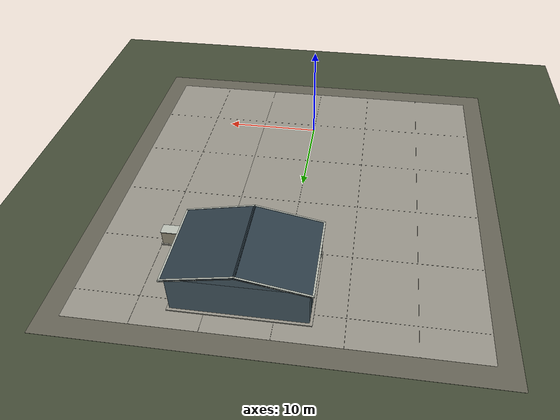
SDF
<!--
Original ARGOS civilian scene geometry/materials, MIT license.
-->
<?xml version="1.0"?>
<sdf version="1.9">
  <world name="inspection_content">
    <scene>
      <ambient>0.55 0.60 0.66</ambient>
      <background>0.76 0.83 0.90</background>
      <shadows>true</shadows>
      <sky />
    </scene>
    <light name="inspection_sun" type="directional">
      <cast_shadows>true</cast_shadows>
      <pose>0 0 12 0 0 0</pose>
      <diffuse>0.93 0.89 0.81 1</diffuse>
      <specular>0.18 0.18 0.18 1</specular>
      <direction>-0.45 0.35 -0.82</direction>
      <attenuation>
        <range>1000</range>
        <constant>1</constant>
        <linear>0</linear>
        <quadratic>0</quadratic>
      </attenuation>
    </light>
    <model name="inspection_ground">
      <static>true</static>
      <pose>0 0 0 0 0 0</pose>
      <link name="structure">
        <collision name="ground_collision">
          <pose>0 0 0 0 0 0</pose>
          <geometry>
            <plane>
              <normal>0 0 1</normal>
              <size>2000 2000</size>
            </plane>
          </geometry>
        </collision>
        <visual name="rough_ground">
          <pose>0 0 0 0 0 0</pose>
          <geometry>
            <plane>
              <normal>0 0 1</normal>
              <size>2000 2000</size>
            </plane>
          </geometry>
          <material>
            <ambient>0.26 0.29 0.21 1</ambient>
            <diffuse>0.26 0.29 0.21 1</diffuse>
            <specular>0.06 0.06 0.06 1</specular>
            <pbr>
              <metal>
                <roughness>0.8</roughness>
                <metalness>0</metalness>
              </metal>
            </pbr>
          </material>
        </visual>
        <visual name="gravel_shoulder">
          <pose>0 11 0 0 0 0</pose>
          <geometry>
            <box>
              <size>40 42 0.01</size>
            </box>
          </geometry>
          <material>
            <ambient>0.39 0.38 0.33 1</ambient>
            <diffuse>0.39 0.38 0.33 1</diffuse>
            <specular>0.06 0.06 0.06 1</specular>
            <pbr>
              <metal>
                <roughness>0.8</roughness>
                <metalness>0</metalness>
              </metal>
            </pbr>
          </material>
        </visual>
        <visual name="concrete_apron">
          <pose>0 11 0.005 0 0 0</pose>
          <geometry>
            <box>
              <size>36 38 0.01</size>
            </box>
          </geometry>
          <material>
            <ambient>0.58 0.57 0.53 1</ambient>
            <diffuse>0.58 0.57 0.53 1</diffuse>
            <specular>0.06 0.06 0.06 1</specular>
            <pbr>
              <metal>
                <roughness>0.8</roughness>
                <metalness>0</metalness>
              </metal>
            </pbr>
          </material>
        </visual>
        <visual name="expansion_joint_long_0">
          <pose>-12 11 0.0105 0 0 0</pose>
          <geometry>
            <box>
              <size>0.018 38 0.001</size>
            </box>
          </geometry>
          <material>
            <ambient>0.47 0.465 0.43 1</ambient>
            <diffuse>0.47 0.465 0.43 1</diffuse>
            <specular>0.06 0.06 0.06 1</specular>
            <pbr>
              <metal>
                <roughness>0.8</roughness>
                <metalness>0</metalness>
              </metal>
            </pbr>
          </material>
        </visual>
        <visual name="expansion_joint_long_1">
          <pose>-6 11 0.0105 0 0 0</pose>
          <geometry>
            <box>
              <size>0.018 38 0.001</size>
            </box>
          </geometry>
          <material>
            <ambient>0.47 0.465 0.43 1</ambient>
            <diffuse>0.47 0.465 0.43 1</diffuse>
            <specular>0.06 0.06 0.06 1</specular>
            <pbr>
              <metal>
                <roughness>0.8</roughness>
                <metalness>0</metalness>
              </metal>
            </pbr>
          </material>
        </visual>
        <visual name="expansion_joint_long_2">
          <pose>0 11 0.0105 0 0 0</pose>
          <geometry>
            <box>
              <size>0.018 38 0.001</size>
            </box>
          </geometry>
          <material>
            <ambient>0.47 0.465 0.43 1</ambient>
            <diffuse>0.47 0.465 0.43 1</diffuse>
            <specular>0.06 0.06 0.06 1</specular>
            <pbr>
              <metal>
                <roughness>0.8</roughness>
                <metalness>0</metalness>
              </metal>
            </pbr>
          </material>
        </visual>
        <visual name="expansion_joint_long_3">
          <pose>6 11 0.0105 0 0 0</pose>
          <geometry>
            <box>
              <size>0.018 38 0.001</size>
            </box>
          </geometry>
          <material>
            <ambient>0.47 0.465 0.43 1</ambient>
            <diffuse>0.47 0.465 0.43 1</diffuse>
            <specular>0.06 0.06 0.06 1</specular>
            <pbr>
              <metal>
                <roughness>0.8</roughness>
                <metalness>0</metalness>
              </metal>
            </pbr>
          </material>
        </visual>
        <visual name="expansion_joint_long_4">
          <pose>12 11 0.0105 0 0 0</pose>
          <geometry>
            <box>
              <size>0.018 38 0.001</size>
            </box>
          </geometry>
          <material>
            <ambient>0.47 0.465 0.43 1</ambient>
            <diffuse>0.47 0.465 0.43 1</diffuse>
            <specular>0.06 0.06 0.06 1</specular>
            <pbr>
              <metal>
                <roughness>0.8</roughness>
                <metalness>0</metalness>
              </metal>
            </pbr>
          </material>
        </visual>
        <visual name="expansion_joint_cross_0">
          <pose>0 -1 0.0105 0 0 0</pose>
          <geometry>
            <box>
              <size>36 0.018 0.001</size>
            </box>
          </geometry>
          <material>
            <ambient>0.47 0.465 0.43 1</ambient>
            <diffuse>0.47 0.465 0.43 1</diffuse>
            <specular>0.06 0.06 0.06 1</specular>
            <pbr>
              <metal>
                <roughness>0.8</roughness>
                <metalness>0</metalness>
              </metal>
            </pbr>
          </material>
        </visual>
        <visual name="expansion_joint_cross_1">
          <pose>0 6 0.0105 0 0 0</pose>
          <geometry>
            <box>
              <size>36 0.018 0.001</size>
            </box>
          </geometry>
          <material>
            <ambient>0.47 0.465 0.43 1</ambient>
            <diffuse>0.47 0.465 0.43 1</diffuse>
            <specular>0.06 0.06 0.06 1</specular>
            <pbr>
              <metal>
                <roughness>0.8</roughness>
                <metalness>0</metalness>
              </metal>
            </pbr>
          </material>
        </visual>
        <visual name="expansion_joint_cross_2">
          <pose>0 13 0.0105 0 0 0</pose>
          <geometry>
            <box>
              <size>36 0.018 0.001</size>
            </box>
          </geometry>
          <material>
            <ambient>0.47 0.465 0.43 1</ambient>
            <diffuse>0.47 0.465 0.43 1</diffuse>
            <specular>0.06 0.06 0.06 1</specular>
            <pbr>
              <metal>
                <roughness>0.8</roughness>
                <metalness>0</metalness>
              </metal>
            </pbr>
          </material>
        </visual>
        <visual name="expansion_joint_cross_3">
          <pose>0 20 0.0105 0 0 0</pose>
          <geometry>
            <box>
              <size>36 0.018 0.001</size>
            </box>
          </geometry>
          <material>
            <ambient>0.47 0.465 0.43 1</ambient>
            <diffuse>0.47 0.465 0.43 1</diffuse>
            <specular>0.06 0.06 0.06 1</specular>
            <pbr>
              <metal>
                <roughness>0.8</roughness>
                <metalness>0</metalness>
              </metal>
            </pbr>
          </material>
        </visual>
        <visual name="expansion_joint_cross_4">
          <pose>0 27 0.0105 0 0 0</pose>
          <geometry>
            <box>
              <size>36 0.018 0.001</size>
            </box>
          </geometry>
          <material>
            <ambient>0.47 0.465 0.43 1</ambient>
            <diffuse>0.47 0.465 0.43 1</diffuse>
            <specular>0.06 0.06 0.06 1</specular>
            <pbr>
              <metal>
                <roughness>0.8</roughness>
                <metalness>0</metalness>
              </metal>
            </pbr>
          </material>
        </visual>
      </link>
    </model>
    <model name="inspection_shed">
      <static>true</static>
      <pose>3 24 0 0 0 0</pose>
      <link name="structure">
        <visual name="footing">
          <pose>0 0 0.04 0 0 0</pose>
          <geometry>
            <box>
              <size>12.5 8.5 0.16</size>
            </box>
          </geometry>
          <material>
            <ambient>0.58 0.57 0.53 1</ambient>
            <diffuse>0.58 0.57 0.53 1</diffuse>
            <specular>0.06 0.06 0.06 1</specular>
            <pbr>
              <metal>
                <roughness>0.8</roughness>
                <metalness>0</metalness>
              </metal>
            </pbr>
          </material>
        </visual>
        <visual name="enclosed_walls">
          <pose>0 0 1.99 0 0 0</pose>
          <geometry>
            <box>
              <size>12 8 3.74</size>
            </box>
          </geometry>
          <material>
            <ambient>0.31 0.4 0.44 1</ambient>
            <diffuse>0.31 0.4 0.44 1</diffuse>
            <specular>0.06 0.06 0.06 1</specular>
            <pbr>
              <metal>
                <roughness>0.8</roughness>
                <metalness>0</metalness>
              </metal>
            </pbr>
          </material>
        </visual>
        <collision name="wall_collision">
          <pose>0 0 1.93 0 0 0</pose>
          <geometry>
            <box>
              <size>12 8 3.86</size>
            </box>
          </geometry>
        </collision>
        <visual name="front_gable">
          <pose>0 -4 3.86 0 0 0</pose>
          <geometry>
            <mesh>
              <uri>model://argos_inspection_assets/shed_gable.obj</uri>
            </mesh>
          </geometry>
          <material>
            <ambient>0.31 0.4 0.44 1</ambient>
            <diffuse>0.31 0.4 0.44 1</diffuse>
            <specular>0.06 0.06 0.06 1</specular>
            <pbr>
              <metal>
                <roughness>0.8</roughness>
                <metalness>0</metalness>
              </metal>
            </pbr>
          </material>
        </visual>
        <visual name="front_fascia_-1">
          <pose>-3.12 -4.25 4.46 0 -0.1974 0</pose>
          <geometry>
            <box>
              <size>6.52 0.15 0.18</size>
            </box>
          </geometry>
          <material>
            <ambient>0.72 0.74 0.7 1</ambient>
            <diffuse>0.72 0.74 0.7 1</diffuse>
            <specular>0.06 0.06 0.06 1</specular>
            <pbr>
              <metal>
                <roughness>0.8</roughness>
                <metalness>0</metalness>
              </metal>
            </pbr>
          </material>
        </visual>
        <visual name="front_fascia_1">
          <pose>3.12 -4.25 4.46 0 0.1974 0</pose>
          <geometry>
            <box>
              <size>6.52 0.15 0.18</size>
            </box>
          </geometry>
          <material>
            <ambient>0.72 0.74 0.7 1</ambient>
            <diffuse>0.72 0.74 0.7 1</diffuse>
            <specular>0.06 0.06 0.06 1</specular>
            <pbr>
              <metal>
                <roughness>0.8</roughness>
                <metalness>0</metalness>
              </metal>
            </pbr>
          </material>
        </visual>
        <visual name="rear_gable">
          <pose>0 4 3.86 0 0 0</pose>
          <geometry>
            <mesh>
              <uri>model://argos_inspection_assets/shed_gable.obj</uri>
            </mesh>
          </geometry>
          <material>
            <ambient>0.31 0.4 0.44 1</ambient>
            <diffuse>0.31 0.4 0.44 1</diffuse>
            <specular>0.06 0.06 0.06 1</specular>
            <pbr>
              <metal>
                <roughness>0.8</roughness>
                <metalness>0</metalness>
              </metal>
            </pbr>
          </material>
        </visual>
        <visual name="rear_fascia_-1">
          <pose>-3.12 4.25 4.46 0 -0.1974 0</pose>
          <geometry>
            <box>
              <size>6.52 0.15 0.18</size>
            </box>
          </geometry>
          <material>
            <ambient>0.72 0.74 0.7 1</ambient>
            <diffuse>0.72 0.74 0.7 1</diffuse>
            <specular>0.06 0.06 0.06 1</specular>
            <pbr>
              <metal>
                <roughness>0.8</roughness>
                <metalness>0</metalness>
              </metal>
            </pbr>
          </material>
        </visual>
        <visual name="rear_fascia_1">
          <pose>3.12 4.25 4.46 0 0.1974 0</pose>
          <geometry>
            <box>
              <size>6.52 0.15 0.18</size>
            </box>
          </geometry>
          <material>
            <ambient>0.72 0.74 0.7 1</ambient>
            <diffuse>0.72 0.74 0.7 1</diffuse>
            <specular>0.06 0.06 0.06 1</specular>
            <pbr>
              <metal>
                <roughness>0.8</roughness>
                <metalness>0</metalness>
              </metal>
            </pbr>
          </material>
        </visual>
        <visual name="west_roof">
          <pose>-3.12 0 4.46 0 -0.1974 0</pose>
          <geometry>
            <box>
              <size>6.52 8.65 0.13</size>
            </box>
          </geometry>
          <material>
            <ambient>0.17 0.23 0.27 1</ambient>
            <diffuse>0.17 0.23 0.27 1</diffuse>
            <specular>0.06 0.06 0.06 1</specular>
            <pbr>
              <metal>
                <roughness>0.7</roughness>
                <metalness>0</metalness>
              </metal>
            </pbr>
          </material>
        </visual>
        <collision name="west_roof_collision">
          <pose>-3.12 0 4.46 0 -0.1974 0</pose>
          <geometry>
            <box>
              <size>6.52 8.65 0.13</size>
            </box>
          </geometry>
        </collision>
        <visual name="west_gutter">
          <pose>-6.3 0 3.83 0 0 0</pose>
          <geometry>
            <box>
              <size>0.16 8.68 0.15</size>
            </box>
          </geometry>
          <material>
            <ambient>0.72 0.74 0.7 1</ambient>
            <diffuse>0.72 0.74 0.7 1</diffuse>
            <specular>0.06 0.06 0.06 1</specular>
            <pbr>
              <metal>
                <roughness>0.8</roughness>
                <metalness>0</metalness>
              </metal>
            </pbr>
          </material>
        </visual>
        <visual name="west_downpipe">
          <pose>-6.16 -3.55 1.94 0 0 0</pose>
          <geometry>
            <cylinder>
              <radius>0.055</radius>
              <length>3.55</length>
            </cylinder>
          </geometry>
          <material>
            <ambient>0.72 0.74 0.7 1</ambient>
            <diffuse>0.72 0.74 0.7 1</diffuse>
            <specular>0.06 0.06 0.06 1</specular>
            <pbr>
              <metal>
                <roughness>0.8</roughness>
                <metalness>0</metalness>
              </metal>
            </pbr>
          </material>
        </visual>
        <visual name="west_wall_seam_0">
          <pose>-6.014 -3 2.04 0 0 0</pose>
          <geometry>
            <box>
              <size>0.045 0.035 3.54</size>
            </box>
          </geometry>
          <material>
            <ambient>0.37 0.45 0.48 1</ambient>
            <diffuse>0.37 0.45 0.48 1</diffuse>
            <specular>0.06 0.06 0.06 1</specular>
            <pbr>
              <metal>
                <roughness>0.8</roughness>
                <metalness>0</metalness>
              </metal>
            </pbr>
          </material>
        </visual>
        <visual name="west_wall_seam_1">
          <pose>-6.014 -2 2.04 0 0 0</pose>
          <geometry>
            <box>
              <size>0.045 0.035 3.54</size>
            </box>
          </geometry>
          <material>
            <ambient>0.37 0.45 0.48 1</ambient>
            <diffuse>0.37 0.45 0.48 1</diffuse>
            <specular>0.06 0.06 0.06 1</specular>
            <pbr>
              <metal>
                <roughness>0.8</roughness>
                <metalness>0</metalness>
              </metal>
            </pbr>
          </material>
        </visual>
        <visual name="west_wall_seam_2">
          <pose>-6.014 -1 2.04 0 0 0</pose>
          <geometry>
            <box>
              <size>0.045 0.035 3.54</size>
            </box>
          </geometry>
          <material>
            <ambient>0.37 0.45 0.48 1</ambient>
            <diffuse>0.37 0.45 0.48 1</diffuse>
            <specular>0.06 0.06 0.06 1</specular>
            <pbr>
              <metal>
                <roughness>0.8</roughness>
                <metalness>0</metalness>
              </metal>
            </pbr>
          </material>
        </visual>
        <visual name="west_wall_seam_3">
          <pose>-6.014 0 2.04 0 0 0</pose>
          <geometry>
            <box>
              <size>0.045 0.035 3.54</size>
            </box>
          </geometry>
          <material>
            <ambient>0.37 0.45 0.48 1</ambient>
            <diffuse>0.37 0.45 0.48 1</diffuse>
            <specular>0.06 0.06 0.06 1</specular>
            <pbr>
              <metal>
                <roughness>0.8</roughness>
                <metalness>0</metalness>
              </metal>
            </pbr>
          </material>
        </visual>
        <visual name="west_wall_seam_4">
          <pose>-6.014 1 2.04 0 0 0</pose>
          <geometry>
            <box>
              <size>0.045 0.035 3.54</size>
            </box>
          </geometry>
          <material>
            <ambient>0.37 0.45 0.48 1</ambient>
            <diffuse>0.37 0.45 0.48 1</diffuse>
            <specular>0.06 0.06 0.06 1</specular>
            <pbr>
              <metal>
                <roughness>0.8</roughness>
                <metalness>0</metalness>
              </metal>
            </pbr>
          </material>
        </visual>
        <visual name="west_wall_seam_5">
          <pose>-6.014 2 2.04 0 0 0</pose>
          <geometry>
            <box>
              <size>0.045 0.035 3.54</size>
            </box>
          </geometry>
          <material>
            <ambient>0.37 0.45 0.48 1</ambient>
            <diffuse>0.37 0.45 0.48 1</diffuse>
            <specular>0.06 0.06 0.06 1</specular>
            <pbr>
              <metal>
                <roughness>0.8</roughness>
                <metalness>0</metalness>
              </metal>
            </pbr>
          </material>
        </visual>
        <visual name="west_wall_seam_6">
          <pose>-6.014 3 2.04 0 0 0</pose>
          <geometry>
            <box>
              <size>0.045 0.035 3.54</size>
            </box>
          </geometry>
          <material>
            <ambient>0.37 0.45 0.48 1</ambient>
            <diffuse>0.37 0.45 0.48 1</diffuse>
            <specular>0.06 0.06 0.06 1</specular>
            <pbr>
              <metal>
                <roughness>0.8</roughness>
                <metalness>0</metalness>
              </metal>
            </pbr>
          </material>
        </visual>
        <visual name="east_roof">
          <pose>3.12 0 4.46 0 0.1974 0</pose>
          <geometry>
            <box>
              <size>6.52 8.65 0.13</size>
            </box>
          </geometry>
          <material>
            <ambient>0.17 0.23 0.27 1</ambient>
            <diffuse>0.17 0.23 0.27 1</diffuse>
            <specular>0.06 0.06 0.06 1</specular>
            <pbr>
              <metal>
                <roughness>0.7</roughness>
                <metalness>0</metalness>
              </metal>
            </pbr>
          </material>
        </visual>
        <collision name="east_roof_collision">
          <pose>3.12 0 4.46 0 0.1974 0</pose>
          <geometry>
            <box>
              <size>6.52 8.65 0.13</size>
            </box>
          </geometry>
        </collision>
        <visual name="east_gutter">
          <pose>6.3 0 3.83 0 0 0</pose>
          <geometry>
            <box>
              <size>0.16 8.68 0.15</size>
            </box>
          </geometry>
          <material>
            <ambient>0.72 0.74 0.7 1</ambient>
            <diffuse>0.72 0.74 0.7 1</diffuse>
            <specular>0.06 0.06 0.06 1</specular>
            <pbr>
              <metal>
                <roughness>0.8</roughness>
                <metalness>0</metalness>
              </metal>
            </pbr>
          </material>
        </visual>
        <visual name="east_downpipe">
          <pose>6.16 -3.55 1.94 0 0 0</pose>
          <geometry>
            <cylinder>
              <radius>0.055</radius>
              <length>3.55</length>
            </cylinder>
          </geometry>
          <material>
            <ambient>0.72 0.74 0.7 1</ambient>
            <diffuse>0.72 0.74 0.7 1</diffuse>
            <specular>0.06 0.06 0.06 1</specular>
            <pbr>
              <metal>
                <roughness>0.8</roughness>
                <metalness>0</metalness>
              </metal>
            </pbr>
          </material>
        </visual>
        <visual name="east_wall_seam_0">
          <pose>6.014 -3 2.04 0 0 0</pose>
          <geometry>
            <box>
              <size>0.045 0.035 3.54</size>
            </box>
          </geometry>
          <material>
            <ambient>0.37 0.45 0.48 1</ambient>
            <diffuse>0.37 0.45 0.48 1</diffuse>
            <specular>0.06 0.06 0.06 1</specular>
            <pbr>
              <metal>
                <roughness>0.8</roughness>
                <metalness>0</metalness>
              </metal>
            </pbr>
          </material>
        </visual>
        <visual name="east_wall_seam_1">
          <pose>6.014 -2 2.04 0 0 0</pose>
          <geometry>
            <box>
              <size>0.045 0.035 3.54</size>
            </box>
          </geometry>
          <material>
            <ambient>0.37 0.45 0.48 1</ambient>
            <diffuse>0.37 0.45 0.48 1</diffuse>
            <specular>0.06 0.06 0.06 1</specular>
            <pbr>
              <metal>
                <roughness>0.8</roughness>
                <metalness>0</metalness>
              </metal>
            </pbr>
          </material>
        </visual>
        <visual name="east_wall_seam_2">
          <pose>6.014 -1 2.04 0 0 0</pose>
          <geometry>
            <box>
              <size>0.045 0.035 3.54</size>
            </box>
          </geometry>
          <material>
            <ambient>0.37 0.45 0.48 1</ambient>
            <diffuse>0.37 0.45 0.48 1</diffuse>
            <specular>0.06 0.06 0.06 1</specular>
            <pbr>
              <metal>
                <roughness>0.8</roughness>
                <metalness>0</metalness>
              </metal>
            </pbr>
          </material>
        </visual>
        <visual name="east_wall_seam_3">
          <pose>6.014 0 2.04 0 0 0</pose>
          <geometry>
            <box>
              <size>0.045 0.035 3.54</size>
            </box>
          </geometry>
          <material>
            <ambient>0.37 0.45 0.48 1</ambient>
            <diffuse>0.37 0.45 0.48 1</diffuse>
            <specular>0.06 0.06 0.06 1</specular>
            <pbr>
              <metal>
                <roughness>0.8</roughness>
                <metalness>0</metalness>
              </metal>
            </pbr>
          </material>
        </visual>
        <visual name="east_wall_seam_4">
          <pose>6.014 1 2.04 0 0 0</pose>
          <geometry>
            <box>
              <size>0.045 0.035 3.54</size>
            </box>
          </geometry>
          <material>
            <ambient>0.37 0.45 0.48 1</ambient>
            <diffuse>0.37 0.45 0.48 1</diffuse>
            <specular>0.06 0.06 0.06 1</specular>
            <pbr>
              <metal>
                <roughness>0.8</roughness>
                <metalness>0</metalness>
              </metal>
            </pbr>
          </material>
        </visual>
        <visual name="east_wall_seam_5">
          <pose>6.014 2 2.04 0 0 0</pose>
          <geometry>
            <box>
              <size>0.045 0.035 3.54</size>
            </box>
          </geometry>
          <material>
            <ambient>0.37 0.45 0.48 1</ambient>
            <diffuse>0.37 0.45 0.48 1</diffuse>
            <specular>0.06 0.06 0.06 1</specular>
            <pbr>
              <metal>
                <roughness>0.8</roughness>
                <metalness>0</metalness>
              </metal>
            </pbr>
          </material>
        </visual>
        <visual name="east_wall_seam_6">
          <pose>6.014 3 2.04 0 0 0</pose>
          <geometry>
            <box>
              <size>0.045 0.035 3.54</size>
            </box>
          </geometry>
          <material>
            <ambient>0.37 0.45 0.48 1</ambient>
            <diffuse>0.37 0.45 0.48 1</diffuse>
            <specular>0.06 0.06 0.06 1</specular>
            <pbr>
              <metal>
                <roughness>0.8</roughness>
                <metalness>0</metalness>
              </metal>
            </pbr>
          </material>
        </visual>
        <visual name="ridge_cap">
          <pose>0 0 5.1 0 0 0</pose>
          <geometry>
            <box>
              <size>0.22 8.68 0.1</size>
            </box>
          </geometry>
          <material>
            <ambient>0.17 0.23 0.27 1</ambient>
            <diffuse>0.17 0.23 0.27 1</diffuse>
            <specular>0.06 0.06 0.06 1</specular>
            <pbr>
              <metal>
                <roughness>0.7</roughness>
                <metalness>0</metalness>
              </metal>
            </pbr>
          </material>
        </visual>
        <visual name="roller_door_recess">
          <pose>-0.7 -4.04 1.785 0 0 0</pose>
          <geometry>
            <box>
              <size>5.7 0.12 3.35</size>
            </box>
          </geometry>
          <material>
            <ambient>0.23 0.29 0.3 1</ambient>
            <diffuse>0.23 0.29 0.3 1</diffuse>
            <specular>0.06 0.06 0.06 1</specular>
            <pbr>
              <metal>
                <roughness>0.8</roughness>
                <metalness>0</metalness>
              </metal>
            </pbr>
          </material>
        </visual>
        <visual name="roller_door_slat_0">
          <pose>-0.7 -4.12 0.27 0 0 0</pose>
          <geometry>
            <box>
              <size>5.44 0.095 0.255</size>
            </box>
          </geometry>
          <material>
            <ambient>0.53 0.59 0.59 1</ambient>
            <diffuse>0.53 0.59 0.59 1</diffuse>
            <specular>0.06 0.06 0.06 1</specular>
            <pbr>
              <metal>
                <roughness>0.65</roughness>
                <metalness>0</metalness>
              </metal>
            </pbr>
          </material>
        </visual>
        <visual name="roller_door_slat_1">
          <pose>-0.7 -4.12 0.537 0 0 0</pose>
          <geometry>
            <box>
              <size>5.44 0.095 0.255</size>
            </box>
          </geometry>
          <material>
            <ambient>0.53 0.59 0.59 1</ambient>
            <diffuse>0.53 0.59 0.59 1</diffuse>
            <specular>0.06 0.06 0.06 1</specular>
            <pbr>
              <metal>
                <roughness>0.65</roughness>
                <metalness>0</metalness>
              </metal>
            </pbr>
          </material>
        </visual>
        <visual name="roller_door_slat_2">
          <pose>-0.7 -4.12 0.804 0 0 0</pose>
          <geometry>
            <box>
              <size>5.44 0.095 0.255</size>
            </box>
          </geometry>
          <material>
            <ambient>0.53 0.59 0.59 1</ambient>
            <diffuse>0.53 0.59 0.59 1</diffuse>
            <specular>0.06 0.06 0.06 1</specular>
            <pbr>
              <metal>
                <roughness>0.65</roughness>
                <metalness>0</metalness>
              </metal>
            </pbr>
          </material>
        </visual>
        <visual name="roller_door_slat_3">
          <pose>-0.7 -4.12 1.071 0 0 0</pose>
          <geometry>
            <box>
              <size>5.44 0.095 0.255</size>
            </box>
          </geometry>
          <material>
            <ambient>0.53 0.59 0.59 1</ambient>
            <diffuse>0.53 0.59 0.59 1</diffuse>
            <specular>0.06 0.06 0.06 1</specular>
            <pbr>
              <metal>
                <roughness>0.65</roughness>
                <metalness>0</metalness>
              </metal>
            </pbr>
          </material>
        </visual>
        <visual name="roller_door_slat_4">
          <pose>-0.7 -4.12 1.338 0 0 0</pose>
          <geometry>
            <box>
              <size>5.44 0.095 0.255</size>
            </box>
          </geometry>
          <material>
            <ambient>0.53 0.59 0.59 1</ambient>
            <diffuse>0.53 0.59 0.59 1</diffuse>
            <specular>0.06 0.06 0.06 1</specular>
            <pbr>
              <metal>
                <roughness>0.65</roughness>
                <metalness>0</metalness>
              </metal>
            </pbr>
          </material>
        </visual>
        <visual name="roller_door_slat_5">
          <pose>-0.7 -4.12 1.605 0 0 0</pose>
          <geometry>
            <box>
              <size>5.44 0.095 0.255</size>
            </box>
          </geometry>
          <material>
            <ambient>0.53 0.59 0.59 1</ambient>
            <diffuse>0.53 0.59 0.59 1</diffuse>
            <specular>0.06 0.06 0.06 1</specular>
            <pbr>
              <metal>
                <roughness>0.65</roughness>
                <metalness>0</metalness>
              </metal>
            </pbr>
          </material>
        </visual>
        <visual name="roller_door_slat_6">
          <pose>-0.7 -4.12 1.872 0 0 0</pose>
          <geometry>
            <box>
              <size>5.44 0.095 0.255</size>
            </box>
          </geometry>
          <material>
            <ambient>0.53 0.59 0.59 1</ambient>
            <diffuse>0.53 0.59 0.59 1</diffuse>
            <specular>0.06 0.06 0.06 1</specular>
            <pbr>
              <metal>
                <roughness>0.65</roughness>
                <metalness>0</metalness>
              </metal>
            </pbr>
          </material>
        </visual>
        <visual name="roller_door_slat_7">
          <pose>-0.7 -4.12 2.139 0 0 0</pose>
          <geometry>
            <box>
              <size>5.44 0.095 0.255</size>
            </box>
          </geometry>
          <material>
            <ambient>0.53 0.59 0.59 1</ambient>
            <diffuse>0.53 0.59 0.59 1</diffuse>
            <specular>0.06 0.06 0.06 1</specular>
            <pbr>
              <metal>
                <roughness>0.65</roughness>
                <metalness>0</metalness>
              </metal>
            </pbr>
          </material>
        </visual>
        <visual name="roller_door_slat_8">
          <pose>-0.7 -4.12 2.406 0 0 0</pose>
          <geometry>
            <box>
              <size>5.44 0.095 0.255</size>
            </box>
          </geometry>
          <material>
            <ambient>0.53 0.59 0.59 1</ambient>
            <diffuse>0.53 0.59 0.59 1</diffuse>
            <specular>0.06 0.06 0.06 1</specular>
            <pbr>
              <metal>
                <roughness>0.65</roughness>
                <metalness>0</metalness>
              </metal>
            </pbr>
          </material>
        </visual>
        <visual name="roller_door_slat_9">
          <pose>-0.7 -4.12 2.673 0 0 0</pose>
          <geometry>
            <box>
              <size>5.44 0.095 0.255</size>
            </box>
          </geometry>
          <material>
            <ambient>0.53 0.59 0.59 1</ambient>
            <diffuse>0.53 0.59 0.59 1</diffuse>
            <specular>0.06 0.06 0.06 1</specular>
            <pbr>
              <metal>
                <roughness>0.65</roughness>
                <metalness>0</metalness>
              </metal>
            </pbr>
          </material>
        </visual>
        <visual name="roller_door_slat_10">
          <pose>-0.7 -4.12 2.94 0 0 0</pose>
          <geometry>
            <box>
              <size>5.44 0.095 0.255</size>
            </box>
          </geometry>
          <material>
            <ambient>0.53 0.59 0.59 1</ambient>
            <diffuse>0.53 0.59 0.59 1</diffuse>
            <specular>0.06 0.06 0.06 1</specular>
            <pbr>
              <metal>
                <roughness>0.65</roughness>
                <metalness>0</metalness>
              </metal>
            </pbr>
          </material>
        </visual>
        <visual name="roller_door_slat_11">
          <pose>-0.7 -4.12 3.207 0 0 0</pose>
          <geometry>
            <box>
              <size>5.44 0.095 0.255</size>
            </box>
          </geometry>
          <material>
            <ambient>0.53 0.59 0.59 1</ambient>
            <diffuse>0.53 0.59 0.59 1</diffuse>
            <specular>0.06 0.06 0.06 1</specular>
            <pbr>
              <metal>
                <roughness>0.65</roughness>
                <metalness>0</metalness>
              </metal>
            </pbr>
          </material>
        </visual>
        <visual name="door_jamb_-3.57">
          <pose>-3.57 -4.15 1.845 0 0 0</pose>
          <geometry>
            <box>
              <size>0.14 0.23 3.45</size>
            </box>
          </geometry>
          <material>
            <ambient>0.72 0.74 0.7 1</ambient>
            <diffuse>0.72 0.74 0.7 1</diffuse>
            <specular>0.06 0.06 0.06 1</specular>
            <pbr>
              <metal>
                <roughness>0.8</roughness>
                <metalness>0</metalness>
              </metal>
            </pbr>
          </material>
        </visual>
        <visual name="door_jamb_2.17">
          <pose>2.17 -4.15 1.845 0 0 0</pose>
          <geometry>
            <box>
              <size>0.14 0.23 3.45</size>
            </box>
          </geometry>
          <material>
            <ambient>0.72 0.74 0.7 1</ambient>
            <diffuse>0.72 0.74 0.7 1</diffuse>
            <specular>0.06 0.06 0.06 1</specular>
            <pbr>
              <metal>
                <roughness>0.8</roughness>
                <metalness>0</metalness>
              </metal>
            </pbr>
          </material>
        </visual>
        <visual name="door_lintel">
          <pose>-0.7 -4.15 3.52 0 0 0</pose>
          <geometry>
            <box>
              <size>5.88 0.27 0.2</size>
            </box>
          </geometry>
          <material>
            <ambient>0.72 0.74 0.7 1</ambient>
            <diffuse>0.72 0.74 0.7 1</diffuse>
            <specular>0.06 0.06 0.06 1</specular>
            <pbr>
              <metal>
                <roughness>0.8</roughness>
                <metalness>0</metalness>
              </metal>
            </pbr>
          </material>
        </visual>
        <visual name="door_handle">
          <pose>-0.7 -4.195 0.7 0 0 0</pose>
          <geometry>
            <box>
              <size>0.42 0.055 0.065</size>
            </box>
          </geometry>
          <material>
            <ambient>0.23 0.29 0.3 1</ambient>
            <diffuse>0.23 0.29 0.3 1</diffuse>
            <specular>0.06 0.06 0.06 1</specular>
            <pbr>
              <metal>
                <roughness>0.8</roughness>
                <metalness>0</metalness>
              </metal>
            </pbr>
          </material>
        </visual>
        <visual name="window_frame_0">
          <pose>-4.9 -4.07 2.61 0 0 0</pose>
          <geometry>
            <box>
              <size>1.25 0.13 0.87</size>
            </box>
          </geometry>
          <material>
            <ambient>0.72 0.74 0.7 1</ambient>
            <diffuse>0.72 0.74 0.7 1</diffuse>
            <specular>0.06 0.06 0.06 1</specular>
            <pbr>
              <metal>
                <roughness>0.8</roughness>
                <metalness>0</metalness>
              </metal>
            </pbr>
          </material>
        </visual>
        <visual name="window_glass_0">
          <pose>-4.9 -4.15 2.61 0 0 0</pose>
          <geometry>
            <box>
              <size>1.07 0.04 0.69</size>
            </box>
          </geometry>
          <material>
            <ambient>0.14 0.23 0.27 1</ambient>
            <diffuse>0.14 0.23 0.27 1</diffuse>
            <specular>0.06 0.06 0.06 1</specular>
            <pbr>
              <metal>
                <roughness>0.35</roughness>
                <metalness>0</metalness>
              </metal>
            </pbr>
          </material>
        </visual>
        <visual name="window_mullion_0">
          <pose>-4.9 -4.18 2.61 0 0 0</pose>
          <geometry>
            <box>
              <size>0.045 0.065 0.7</size>
            </box>
          </geometry>
          <material>
            <ambient>0.72 0.74 0.7 1</ambient>
            <diffuse>0.72 0.74 0.7 1</diffuse>
            <specular>0.06 0.06 0.06 1</specular>
            <pbr>
              <metal>
                <roughness>0.8</roughness>
                <metalness>0</metalness>
              </metal>
            </pbr>
          </material>
        </visual>
        <visual name="window_frame_1">
          <pose>4.22 -4.07 2.61 0 0 0</pose>
          <geometry>
            <box>
              <size>1.25 0.13 0.87</size>
            </box>
          </geometry>
          <material>
            <ambient>0.72 0.74 0.7 1</ambient>
            <diffuse>0.72 0.74 0.7 1</diffuse>
            <specular>0.06 0.06 0.06 1</specular>
            <pbr>
              <metal>
                <roughness>0.8</roughness>
                <metalness>0</metalness>
              </metal>
            </pbr>
          </material>
        </visual>
        <visual name="window_glass_1">
          <pose>4.22 -4.15 2.61 0 0 0</pose>
          <geometry>
            <box>
              <size>1.07 0.04 0.69</size>
            </box>
          </geometry>
          <material>
            <ambient>0.14 0.23 0.27 1</ambient>
            <diffuse>0.14 0.23 0.27 1</diffuse>
            <specular>0.06 0.06 0.06 1</specular>
            <pbr>
              <metal>
                <roughness>0.35</roughness>
                <metalness>0</metalness>
              </metal>
            </pbr>
          </material>
        </visual>
        <visual name="window_mullion_1">
          <pose>4.22 -4.18 2.61 0 0 0</pose>
          <geometry>
            <box>
              <size>0.045 0.065 0.7</size>
            </box>
          </geometry>
          <material>
            <ambient>0.72 0.74 0.7 1</ambient>
            <diffuse>0.72 0.74 0.7 1</diffuse>
            <specular>0.06 0.06 0.06 1</specular>
            <pbr>
              <metal>
                <roughness>0.8</roughness>
                <metalness>0</metalness>
              </metal>
            </pbr>
          </material>
        </visual>
        <visual name="service_door">
          <pose>6.035 -2.25 1.205 0 0 0</pose>
          <geometry>
            <box>
              <size>0.1 1.05 2.17</size>
            </box>
          </geometry>
          <material>
            <ambient>0.53 0.59 0.59 1</ambient>
            <diffuse>0.53 0.59 0.59 1</diffuse>
            <specular>0.06 0.06 0.06 1</specular>
            <pbr>
              <metal>
                <roughness>0.8</roughness>
                <metalness>0</metalness>
              </metal>
            </pbr>
          </material>
        </visual>
        <visual name="service_door_handle">
          <pose>6.105 -2.62 1.15 0 0 0</pose>
          <geometry>
            <box>
              <size>0.065 0.16 0.035</size>
            </box>
          </geometry>
          <material>
            <ambient>0.23 0.29 0.3 1</ambient>
            <diffuse>0.23 0.29 0.3 1</diffuse>
            <specular>0.06 0.06 0.06 1</specular>
            <pbr>
              <metal>
                <roughness>0.8</roughness>
                <metalness>0</metalness>
              </metal>
            </pbr>
          </material>
        </visual>
      </link>
    </model>
    <model name="inspection_utility_cabinet">
      <static>true</static>
      <pose>11 20.2 0 0 0 0</pose>
      <link name="structure">
        <visual name="base">
          <pose>0 0 0.08 0 0 0</pose>
          <geometry>
            <box>
              <size>2.05 1.25 0.16</size>
            </box>
          </geometry>
          <material>
            <ambient>0.58 0.57 0.53 1</ambient>
            <diffuse>0.58 0.57 0.53 1</diffuse>
            <specular>0.06 0.06 0.06 1</specular>
            <pbr>
              <metal>
                <roughness>0.8</roughness>
                <metalness>0</metalness>
              </metal>
            </pbr>
          </material>
        </visual>
        <visual name="body">
          <pose>0 0 0.835 0 0 0</pose>
          <geometry>
            <box>
              <size>1.8 1 1.35</size>
            </box>
          </geometry>
          <material>
            <ambient>0.67 0.64 0.55 1</ambient>
            <diffuse>0.67 0.64 0.55 1</diffuse>
            <specular>0.06 0.06 0.06 1</specular>
            <pbr>
              <metal>
                <roughness>0.8</roughness>
                <metalness>0</metalness>
              </metal>
            </pbr>
          </material>
        </visual>
        <collision name="body_collision">
          <pose>0 0 0.78 0 0 0</pose>
          <geometry>
            <box>
              <size>2.05 1.25 1.56</size>
            </box>
          </geometry>
        </collision>
        <visual name="weather_lid">
          <pose>0 0 1.55 0.025 0 0</pose>
          <geometry>
            <box>
              <size>1.93 1.1 0.07</size>
            </box>
          </geometry>
          <material>
            <ambient>0.72 0.74 0.7 1</ambient>
            <diffuse>0.72 0.74 0.7 1</diffuse>
            <specular>0.06 0.06 0.06 1</specular>
            <pbr>
              <metal>
                <roughness>0.7</roughness>
                <metalness>0</metalness>
              </metal>
            </pbr>
          </material>
        </visual>
        <visual name="door_joint">
          <pose>0 -0.51 0.835 0 0 0</pose>
          <geometry>
            <box>
              <size>0.025 0.015 1.22</size>
            </box>
          </geometry>
          <material>
            <ambient>0.23 0.29 0.3 1</ambient>
            <diffuse>0.23 0.29 0.3 1</diffuse>
            <specular>0.06 0.06 0.06 1</specular>
            <pbr>
              <metal>
                <roughness>0.8</roughness>
                <metalness>0</metalness>
              </metal>
            </pbr>
          </material>
        </visual>
        <visual name="handle_-1">
          <pose>-0.14 -0.545 0.87 0 0 0</pose>
          <geometry>
            <box>
              <size>0.035 0.06 0.16</size>
            </box>
          </geometry>
          <material>
            <ambient>0.23 0.29 0.3 1</ambient>
            <diffuse>0.23 0.29 0.3 1</diffuse>
            <specular>0.06 0.06 0.06 1</specular>
            <pbr>
              <metal>
                <roughness>0.8</roughness>
                <metalness>0</metalness>
              </metal>
            </pbr>
          </material>
        </visual>
        <visual name="vent_-1_0">
          <pose>-0.47 -0.52 0.48 0 0 0</pose>
          <geometry>
            <box>
              <size>0.49 0.035 0.045</size>
            </box>
          </geometry>
          <material>
            <ambient>0.23 0.29 0.3 1</ambient>
            <diffuse>0.23 0.29 0.3 1</diffuse>
            <specular>0.06 0.06 0.06 1</specular>
            <pbr>
              <metal>
                <roughness>0.8</roughness>
                <metalness>0</metalness>
              </metal>
            </pbr>
          </material>
        </visual>
        <visual name="vent_-1_1">
          <pose>-0.47 -0.52 0.58 0 0 0</pose>
          <geometry>
            <box>
              <size>0.49 0.035 0.045</size>
            </box>
          </geometry>
          <material>
            <ambient>0.23 0.29 0.3 1</ambient>
            <diffuse>0.23 0.29 0.3 1</diffuse>
            <specular>0.06 0.06 0.06 1</specular>
            <pbr>
              <metal>
                <roughness>0.8</roughness>
                <metalness>0</metalness>
              </metal>
            </pbr>
          </material>
        </visual>
        <visual name="vent_-1_2">
          <pose>-0.47 -0.52 0.68 0 0 0</pose>
          <geometry>
            <box>
              <size>0.49 0.035 0.045</size>
            </box>
          </geometry>
          <material>
            <ambient>0.23 0.29 0.3 1</ambient>
            <diffuse>0.23 0.29 0.3 1</diffuse>
            <specular>0.06 0.06 0.06 1</specular>
            <pbr>
              <metal>
                <roughness>0.8</roughness>
                <metalness>0</metalness>
              </metal>
            </pbr>
          </material>
        </visual>
        <visual name="vent_-1_3">
          <pose>-0.47 -0.52 0.78 0 0 0</pose>
          <geometry>
            <box>
              <size>0.49 0.035 0.045</size>
            </box>
          </geometry>
          <material>
            <ambient>0.23 0.29 0.3 1</ambient>
            <diffuse>0.23 0.29 0.3 1</diffuse>
            <specular>0.06 0.06 0.06 1</specular>
            <pbr>
              <metal>
                <roughness>0.8</roughness>
                <metalness>0</metalness>
              </metal>
            </pbr>
          </material>
        </visual>
        <visual name="handle_1">
          <pose>0.14 -0.545 0.87 0 0 0</pose>
          <geometry>
            <box>
              <size>0.035 0.06 0.16</size>
            </box>
          </geometry>
          <material>
            <ambient>0.23 0.29 0.3 1</ambient>
            <diffuse>0.23 0.29 0.3 1</diffuse>
            <specular>0.06 0.06 0.06 1</specular>
            <pbr>
              <metal>
                <roughness>0.8</roughness>
                <metalness>0</metalness>
              </metal>
            </pbr>
          </material>
        </visual>
        <visual name="vent_1_0">
          <pose>0.47 -0.52 0.48 0 0 0</pose>
          <geometry>
            <box>
              <size>0.49 0.035 0.045</size>
            </box>
          </geometry>
          <material>
            <ambient>0.23 0.29 0.3 1</ambient>
            <diffuse>0.23 0.29 0.3 1</diffuse>
            <specular>0.06 0.06 0.06 1</specular>
            <pbr>
              <metal>
                <roughness>0.8</roughness>
                <metalness>0</metalness>
              </metal>
            </pbr>
          </material>
        </visual>
        <visual name="vent_1_1">
          <pose>0.47 -0.52 0.58 0 0 0</pose>
          <geometry>
            <box>
              <size>0.49 0.035 0.045</size>
            </box>
          </geometry>
          <material>
            <ambient>0.23 0.29 0.3 1</ambient>
            <diffuse>0.23 0.29 0.3 1</diffuse>
            <specular>0.06 0.06 0.06 1</specular>
            <pbr>
              <metal>
                <roughness>0.8</roughness>
                <metalness>0</metalness>
              </metal>
            </pbr>
          </material>
        </visual>
        <visual name="vent_1_2">
          <pose>0.47 -0.52 0.68 0 0 0</pose>
          <geometry>
            <box>
              <size>0.49 0.035 0.045</size>
            </box>
          </geometry>
          <material>
            <ambient>0.23 0.29 0.3 1</ambient>
            <diffuse>0.23 0.29 0.3 1</diffuse>
            <specular>0.06 0.06 0.06 1</specular>
            <pbr>
              <metal>
                <roughness>0.8</roughness>
                <metalness>0</metalness>
              </metal>
            </pbr>
          </material>
        </visual>
        <visual name="vent_1_3">
          <pose>0.47 -0.52 0.78 0 0 0</pose>
          <geometry>
            <box>
              <size>0.49 0.035 0.045</size>
            </box>
          </geometry>
          <material>
            <ambient>0.23 0.29 0.3 1</ambient>
            <diffuse>0.23 0.29 0.3 1</diffuse>
            <specular>0.06 0.06 0.06 1</specular>
            <pbr>
              <metal>
                <roughness>0.8</roughness>
                <metalness>0</metalness>
              </metal>
            </pbr>
          </material>
        </visual>
      </link>
    </model>
  </world>
</sdf>
